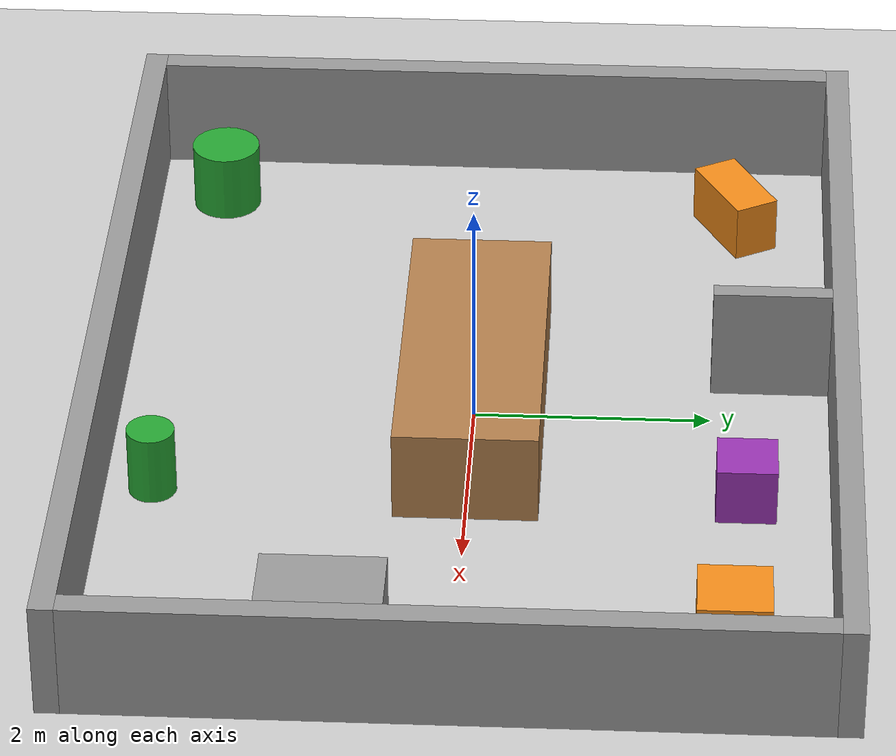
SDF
<?xml version="1.0"?>
<!-- SINH TU DONG boi tools/wt05_world.py - sua SHAPES trong script roi chay lai, khong sua tay. -->
<sdf version="1.6">
  <world name="wt05_room">
    <include><uri>model://sun</uri></include>
    <include><uri>model://ground_plane</uri></include>

    <!-- Giong empty.world cua tuan 4: buoc 1 ms, 1000 Hz, RTF 1 -->
    <physics type="ode">
      <max_step_size>0.001</max_step_size>
      <real_time_factor>1</real_time_factor>
      <real_time_update_rate>1000</real_time_update_rate>
    </physics>

    <!-- Tat bong do de giam tai do hoa tren WSLg -->
    <scene>
      <shadows>false</shadows>
      <ambient>0.5 0.5 0.5 1</ambient>
      <background>0.75 0.75 0.75 1</background>
    </scene>

    <!-- Camera nhin gan nhu thang tu tren xuong, +x sang phai, +y len tren: cung
         huong voi ban do SLAM de chup anh so sanh -->
    <gui fullscreen="0">
      <camera name="user_camera">
        <pose>0 -1.2 12.5 0 1.45 1.5708</pose>
      </camera>
    </gui>

    <!-- [05.2 kich ban C] dich vu /get_entity_state, /set_entity_state -->
    <plugin name="gazebo_ros_state" filename="libgazebo_ros_state.so">
      <update_rate>1.0</update_rate>
    </plugin>

    <model name="wall_north">
      <static>true</static>
      <pose>0.0000 3.1000 0.500 0 0 0.0000</pose>
      <link name="link">
        <collision name="collision"><geometry><box><size>8.4000 0.2000 1.000</size></box></geometry></collision>
        <visual name="visual">
          <geometry><box><size>8.4000 0.2000 1.000</size></box></geometry>
          <material><script>
            <uri>file://media/materials/scripts/gazebo.material</uri><name>Gazebo/Grey</name>
          </script></material>
        </visual>
      </link>
    </model>
    <model name="wall_south">
      <static>true</static>
      <pose>0.0000 -3.1000 0.500 0 0 0.0000</pose>
      <link name="link">
        <collision name="collision"><geometry><box><size>8.4000 0.2000 1.000</size></box></geometry></collision>
        <visual name="visual">
          <geometry><box><size>8.4000 0.2000 1.000</size></box></geometry>
          <material><script>
            <uri>file://media/materials/scripts/gazebo.material</uri><name>Gazebo/Grey</name>
          </script></material>
        </visual>
      </link>
    </model>
    <model name="wall_east">
      <static>true</static>
      <pose>4.1000 0.0000 0.500 0 0 0.0000</pose>
      <link name="link">
        <collision name="collision"><geometry><box><size>0.2000 6.0000 1.000</size></box></geometry></collision>
        <visual name="visual">
          <geometry><box><size>0.2000 6.0000 1.000</size></box></geometry>
          <material><script>
            <uri>file://media/materials/scripts/gazebo.material</uri><name>Gazebo/Grey</name>
          </script></material>
        </visual>
      </link>
    </model>
    <model name="wall_west">
      <static>true</static>
      <pose>-4.1000 0.0000 0.500 0 0 0.0000</pose>
      <link name="link">
        <collision name="collision"><geometry><box><size>0.2000 6.0000 1.000</size></box></geometry></collision>
        <visual name="visual">
          <geometry><box><size>0.2000 6.0000 1.000</size></box></geometry>
          <material><script>
            <uri>file://media/materials/scripts/gazebo.material</uri><name>Gazebo/Grey</name>
          </script></material>
        </visual>
      </link>
    </model>
    <model name="island">
      <static>true</static>
      <pose>0.0000 0.0000 0.400 0 0 0.0000</pose>
      <link name="link">
        <collision name="collision"><geometry><box><size>3.0000 1.2000 0.800</size></box></geometry></collision>
        <visual name="visual">
          <geometry><box><size>3.0000 1.2000 0.800</size></box></geometry>
          <material><script>
            <uri>file://media/materials/scripts/gazebo.material</uri><name>Gazebo/Wood</name>
          </script></material>
        </visual>
      </link>
    </model>
    <model name="stub">
      <static>true</static>
      <pose>-0.5000 2.5000 0.500 0 0 0.0000</pose>
      <link name="link">
        <collision name="collision"><geometry><box><size>0.1500 1.0000 1.000</size></box></geometry></collision>
        <visual name="visual">
          <geometry><box><size>0.1500 1.0000 1.000</size></box></geometry>
          <material><script>
            <uri>file://media/materials/scripts/gazebo.material</uri><name>Gazebo/Grey</name>
          </script></material>
        </visual>
      </link>
    </model>
    <model name="alcove">
      <static>true</static>
      <pose>3.7000 -1.0000 0.500 0 0 0.0000</pose>
      <link name="link">
        <collision name="collision"><geometry><box><size>0.6000 1.0000 1.000</size></box></geometry></collision>
        <visual name="visual">
          <geometry><box><size>0.6000 1.0000 1.000</size></box></geometry>
          <material><script>
            <uri>file://media/materials/scripts/gazebo.material</uri><name>Gazebo/Grey</name>
          </script></material>
        </visual>
      </link>
    </model>
    <model name="box_ne">
      <static>true</static>
      <pose>3.0000 2.2000 0.250 0 0 0.0000</pose>
      <link name="link">
        <collision name="collision"><geometry><box><size>0.6000 0.6000 0.500</size></box></geometry></collision>
        <visual name="visual">
          <geometry><box><size>0.6000 0.6000 0.500</size></box></geometry>
          <material><script>
            <uri>file://media/materials/scripts/gazebo.material</uri><name>Gazebo/Orange</name>
          </script></material>
        </visual>
      </link>
    </model>
    <model name="box_nw">
      <static>true</static>
      <pose>-3.0000 2.2000 0.250 0 0 0.5000</pose>
      <link name="link">
        <collision name="collision"><geometry><box><size>0.8000 0.4000 0.500</size></box></geometry></collision>
        <visual name="visual">
          <geometry><box><size>0.8000 0.4000 0.500</size></box></geometry>
          <material><script>
            <uri>file://media/materials/scripts/gazebo.material</uri><name>Gazebo/Orange</name>
          </script></material>
        </visual>
      </link>
    </model>
    <model name="cyl_sw">
      <static>true</static>
      <pose>-3.3000 -2.4000 0.300 0 0 0</pose>
      <link name="link">
        <collision name="collision"><geometry><cylinder><radius>0.3000</radius><length>0.600</length></cylinder></geometry></collision>
        <visual name="visual">
          <geometry><cylinder><radius>0.3000</radius><length>0.600</length></cylinder></geometry>
          <material><script>
            <uri>file://media/materials/scripts/gazebo.material</uri><name>Gazebo/Green</name>
          </script></material>
        </visual>
      </link>
    </model>
    <model name="cyl_s">
      <static>true</static>
      <pose>1.2000 -2.6000 0.300 0 0 0</pose>
      <link name="link">
        <collision name="collision"><geometry><cylinder><radius>0.2000</radius><length>0.600</length></cylinder></geometry></collision>
        <visual name="visual">
          <geometry><cylinder><radius>0.2000</radius><length>0.600</length></cylinder></geometry>
          <material><script>
            <uri>file://media/materials/scripts/gazebo.material</uri><name>Gazebo/Green</name>
          </script></material>
        </visual>
      </link>
    </model>
    <model name="mover">
      <static>false</static>
      <pose>1.2000 2.3000 0.250 0 0 0.0000</pose>
      <link name="link">
        <kinematic>true</kinematic>
        <gravity>false</gravity>
        <collision name="collision"><geometry><box><size>0.5000 0.5000 0.500</size></box></geometry></collision>
        <visual name="visual">
          <geometry><box><size>0.5000 0.5000 0.500</size></box></geometry>
          <material><script>
            <uri>file://media/materials/scripts/gazebo.material</uri><name>Gazebo/Purple</name>
          </script></material>
        </visual>
      </link>
    </model>
  </world>
</sdf>
